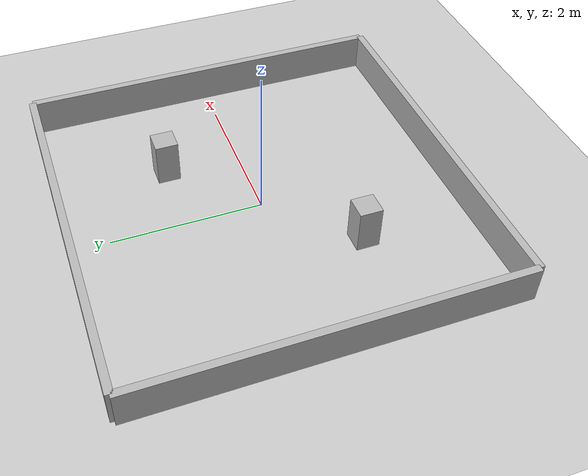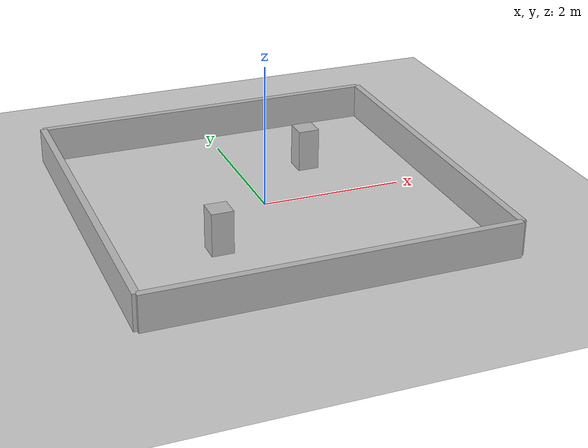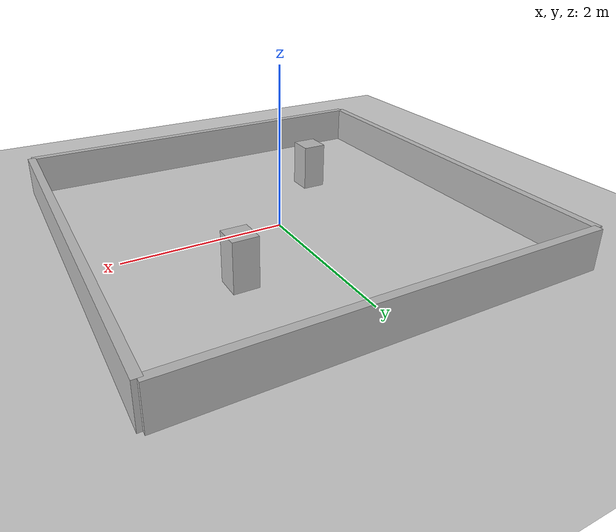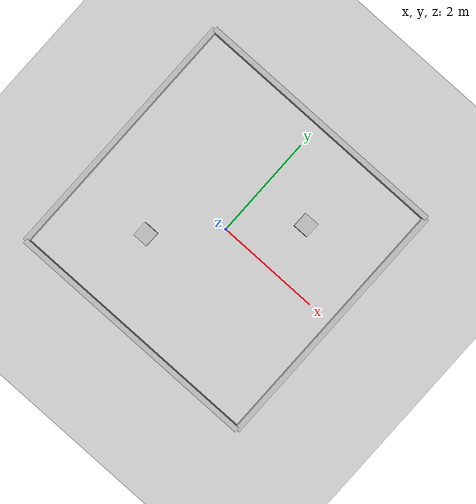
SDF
<?xml version="1.0"?>
<sdf version="1.6">
  <world name="my_world">

    <!-- lighting -->
    <include>
      <uri>model://sun</uri>
    </include>

    <!-- ground plane -->
    <include>
      <uri>model://ground_plane</uri>
    </include>

    <!-- North wall -->
    <model name="north_wall">
      <static>true</static>
      <link name="link">
        <collision name="collision">
          <geometry><box><size>5 0.1 0.5</size></box></geometry>
        </collision>
        <visual name="visual">
          <geometry><box><size>5 0.1 0.5</size></box></geometry>
        </visual>
      </link>
      <pose>0 2.5 0.25 0 0 0</pose>
    </model>

    <!-- South wall -->
    <model name="south_wall">
      <static>true</static>
      <link name="link">
        <collision name="collision">
          <geometry><box><size>5 0.1 0.5</size></box></geometry>
        </collision>
        <visual name="visual">
          <geometry><box><size>5 0.1 0.5</size></box></geometry>
        </visual>
      </link>
      <pose>0 -2.5 0.25 0 0 0</pose>
    </model>

    <!-- East wall -->
    <model name="east_wall">
      <static>true</static>
      <link name="link">
        <collision name="collision">
          <geometry><box><size>0.1 5 0.5</size></box></geometry>
        </collision>
        <visual name="visual">
          <geometry><box><size>0.1 5 0.5</size></box></geometry>
        </visual>
      </link>
      <pose>2.5 0 0.25 0 0 0</pose>
    </model>

    <!-- West wall -->
    <model name="west_wall">
      <static>true</static>
      <link name="link">
        <collision name="collision">
          <geometry><box><size>0.1 5 0.5</size></box></geometry>
        </collision>
        <visual name="visual">
          <geometry><box><size>0.1 5 0.5</size></box></geometry>
        </visual>
      </link>
      <pose>-2.5 0 0.25 0 0 0</pose>
    </model>

    <!-- Obstacle 1 (tall enough to sit in the lidar scan plane) -->
    <model name="box1">
      <static>true</static>
      <link name="link">
        <collision name="collision">
          <geometry><box><size>0.3 0.3 0.6</size></box></geometry>
        </collision>
        <visual name="visual">
          <geometry><box><size>0.3 0.3 0.6</size></box></geometry>
        </visual>
      </link>
      <pose>1 1 0.3 0 0 0</pose>
    </model>

    <!-- Obstacle 2 (tall enough to sit in the lidar scan plane) -->
    <model name="box2">
      <static>true</static>
      <link name="link">
        <collision name="collision">
          <geometry><box><size>0.3 0.3 0.6</size></box></geometry>
        </collision>
        <visual name="visual">
          <geometry><box><size>0.3 0.3 0.6</size></box></geometry>
        </visual>
      </link>
      <pose>-1 -1 0.3 0 0 0</pose>
    </model>

  </world>
</sdf>
